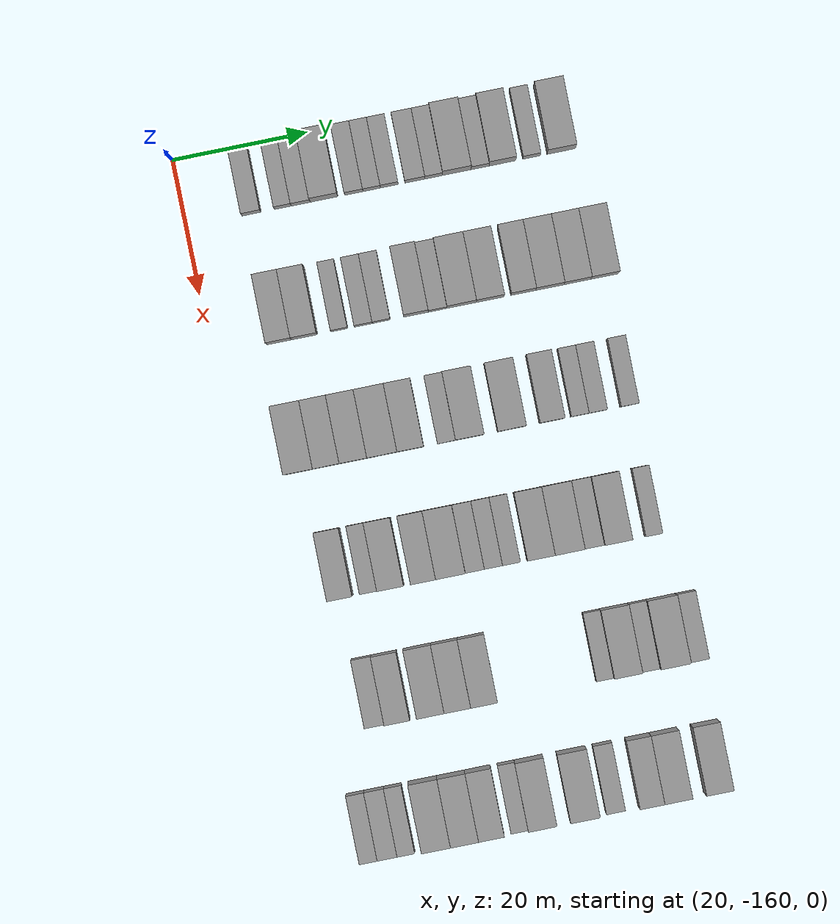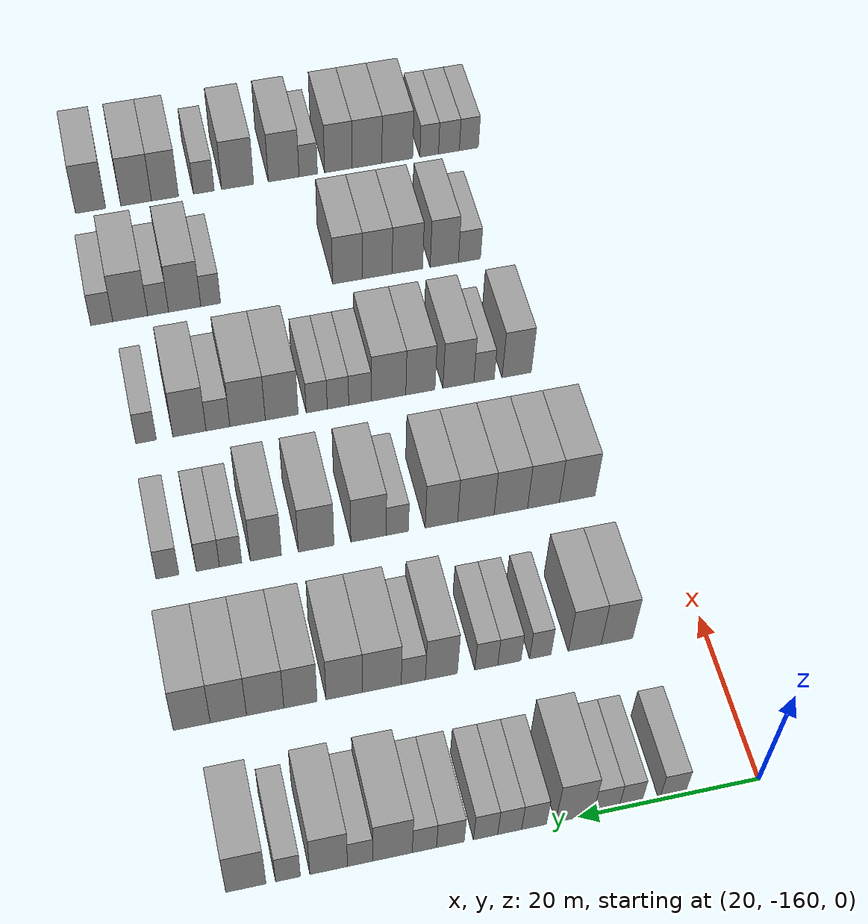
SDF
<sdf version="1.6">
 <world name="default">
  <model name="building_48">
   <static>1</static>
   <pose>25.0000 -150.2662 0 0.000000 0.000000 0.000000</pose>
   <link name="link">
    <pose>0 0 3.00 0 0 0</pose>
    <collision name="collision"><geometry><box><size>10.0000 2.8065 6.0000</size></box></geometry></collision>
    <visual name="visual">
     <cast_shadows>0</cast_shadows>
     <geometry><box><size>10.0000 2.8065 6.0000</size></box></geometry>
     <material>
      <script>
       <uri>model://grey_wall/materials/scripts</uri>
       <uri>model://grey_wall/materials/textures</uri>
       <name>vrc/grey_wall</name>
      </script>
     </material>
    </visual>
   </link>
  </model>
  <model name="building_49">
   <static>1</static>
   <pose>25.0000 -145.6243 0 0.000000 0.000000 0.000000</pose>
   <link name="link">
    <pose>0 0 3.00 0 0 0</pose>
    <collision name="collision"><geometry><box><size>10.0000 2.4772 6.0000</size></box></geometry></collision>
    <visual name="visual">
     <cast_shadows>0</cast_shadows>
     <geometry><box><size>10.0000 2.4772 6.0000</size></box></geometry>
     <material>
      <script>
       <uri>model://grey_wall/materials/scripts</uri>
       <uri>model://grey_wall/materials/textures</uri>
       <name>vrc/grey_wall</name>
      </script>
     </material>
    </visual>
   </link>
  </model>
  <model name="building_50">
   <static>1</static>
   <pose>25.0000 -142.9852 0 0.000000 0.000000 0.000000</pose>
   <link name="link">
    <pose>0 0 3.00 0 0 0</pose>
    <collision name="collision"><geometry><box><size>10.0000 2.8010 6.0000</size></box></geometry></collision>
    <visual name="visual">
     <cast_shadows>0</cast_shadows>
     <geometry><box><size>10.0000 2.8010 6.0000</size></box></geometry>
     <material>
      <script>
       <uri>model://grey_wall/materials/scripts</uri>
       <uri>model://grey_wall/materials/textures</uri>
       <name>vrc/grey_wall</name>
      </script>
     </material>
    </visual>
   </link>
  </model>
  <model name="building_51">
   <static>1</static>
   <pose>25.0000 -139.5423 0 0.000000 0.000000 0.000000</pose>
   <link name="link">
    <pose>0 0 4.50 0 0 0</pose>
    <collision name="collision"><geometry><box><size>10.0000 4.0848 9.0000</size></box></geometry></collision>
    <visual name="visual">
     <cast_shadows>0</cast_shadows>
     <geometry><box><size>10.0000 4.0848 9.0000</size></box></geometry>
     <material>
      <script>
       <uri>model://grey_wall/materials/scripts</uri>
       <uri>model://grey_wall/materials/textures</uri>
       <name>vrc/grey_wall</name>
      </script>
     </material>
    </visual>
   </link>
  </model>
  <model name="building_52">
   <static>1</static>
   <pose>25.0000 -135.1496 0 0.000000 0.000000 0.000000</pose>
   <link name="link">
    <pose>0 0 3.00 0 0 0</pose>
    <collision name="collision"><geometry><box><size>10.0000 2.7006 6.0000</size></box></geometry></collision>
    <visual name="visual">
     <cast_shadows>0</cast_shadows>
     <geometry><box><size>10.0000 2.7006 6.0000</size></box></geometry>
     <material>
      <script>
       <uri>model://grey_wall/materials/scripts</uri>
       <uri>model://grey_wall/materials/textures</uri>
       <name>vrc/grey_wall</name>
      </script>
     </material>
    </visual>
   </link>
  </model>
  <model name="building_53">
   <static>1</static>
   <pose>25.0000 -132.5088 0 0.000000 0.000000 0.000000</pose>
   <link name="link">
    <pose>0 0 3.00 0 0 0</pose>
    <collision name="collision"><geometry><box><size>10.0000 2.5809 6.0000</size></box></geometry></collision>
    <visual name="visual">
     <cast_shadows>0</cast_shadows>
     <geometry><box><size>10.0000 2.5809 6.0000</size></box></geometry>
     <material>
      <script>
       <uri>model://grey_wall/materials/scripts</uri>
       <uri>model://grey_wall/materials/textures</uri>
       <name>vrc/grey_wall</name>
      </script>
     </material>
    </visual>
   </link>
  </model>
  <model name="building_54">
   <static>1</static>
   <pose>25.0000 -129.9151 0 0.000000 0.000000 0.000000</pose>
   <link name="link">
    <pose>0 0 3.00 0 0 0</pose>
    <collision name="collision"><geometry><box><size>10.0000 2.6067 6.0000</size></box></geometry></collision>
    <visual name="visual">
     <cast_shadows>0</cast_shadows>
     <geometry><box><size>10.0000 2.6067 6.0000</size></box></geometry>
     <material>
      <script>
       <uri>model://grey_wall/materials/scripts</uri>
       <uri>model://grey_wall/materials/textures</uri>
       <name>vrc/grey_wall</name>
      </script>
     </material>
    </visual>
   </link>
  </model>
  <model name="building_55">
   <static>1</static>
   <pose>25.0000 -126.1321 0 0.000000 0.000000 0.000000</pose>
   <link name="link">
    <pose>0 0 3.00 0 0 0</pose>
    <collision name="collision"><geometry><box><size>10.0000 2.9593 6.0000</size></box></geometry></collision>
    <visual name="visual">
     <cast_shadows>0</cast_shadows>
     <geometry><box><size>10.0000 2.9593 6.0000</size></box></geometry>
     <material>
      <script>
       <uri>model://grey_wall/materials/scripts</uri>
       <uri>model://grey_wall/materials/textures</uri>
       <name>vrc/grey_wall</name>
      </script>
     </material>
    </visual>
   </link>
  </model>
  <model name="building_56">
   <static>1</static>
   <pose>25.0000 -123.3540 0 0.000000 0.000000 0.000000</pose>
   <link name="link">
    <pose>0 0 3.00 0 0 0</pose>
    <collision name="collision"><geometry><box><size>10.0000 2.5968 6.0000</size></box></geometry></collision>
    <visual name="visual">
     <cast_shadows>0</cast_shadows>
     <geometry><box><size>10.0000 2.5968 6.0000</size></box></geometry>
     <material>
      <script>
       <uri>model://grey_wall/materials/scripts</uri>
       <uri>model://grey_wall/materials/textures</uri>
       <name>vrc/grey_wall</name>
      </script>
     </material>
    </visual>
   </link>
  </model>
  <model name="building_57">
   <static>1</static>
   <pose>25.0000 -119.9415 0 0.000000 0.000000 0.000000</pose>
   <link name="link">
    <pose>0 0 4.50 0 0 0</pose>
    <collision name="collision"><geometry><box><size>10.0000 4.2282 9.0000</size></box></geometry></collision>
    <visual name="visual">
     <cast_shadows>0</cast_shadows>
     <geometry><box><size>10.0000 4.2282 9.0000</size></box></geometry>
     <material>
      <script>
       <uri>model://grey_wall/materials/scripts</uri>
       <uri>model://grey_wall/materials/textures</uri>
       <name>vrc/grey_wall</name>
      </script>
     </material>
    </visual>
   </link>
  </model>
  <model name="building_58">
   <static>1</static>
   <pose>25.0000 -116.5048 0 0.000000 0.000000 0.000000</pose>
   <link name="link">
    <pose>0 0 3.00 0 0 0</pose>
    <collision name="collision"><geometry><box><size>10.0000 2.6453 6.0000</size></box></geometry></collision>
    <visual name="visual">
     <cast_shadows>0</cast_shadows>
     <geometry><box><size>10.0000 2.6453 6.0000</size></box></geometry>
     <material>
      <script>
       <uri>model://grey_wall/materials/scripts</uri>
       <uri>model://grey_wall/materials/textures</uri>
       <name>vrc/grey_wall</name>
      </script>
     </material>
    </visual>
   </link>
  </model>
  <model name="building_59">
   <static>1</static>
   <pose>25.0000 -113.2037 0 0.000000 0.000000 0.000000</pose>
   <link name="link">
    <pose>0 0 4.50 0 0 0</pose>
    <collision name="collision"><geometry><box><size>10.0000 3.9570 9.0000</size></box></geometry></collision>
    <visual name="visual">
     <cast_shadows>0</cast_shadows>
     <geometry><box><size>10.0000 3.9570 9.0000</size></box></geometry>
     <material>
      <script>
       <uri>model://grey_wall/materials/scripts</uri>
       <uri>model://grey_wall/materials/textures</uri>
       <name>vrc/grey_wall</name>
      </script>
     </material>
    </visual>
   </link>
  </model>
  <model name="building_60">
   <static>1</static>
   <pose>25.0000 -108.9264 0 0.000000 0.000000 0.000000</pose>
   <link name="link">
    <pose>0 0 3.00 0 0 0</pose>
    <collision name="collision"><geometry><box><size>10.0000 2.5976 6.0000</size></box></geometry></collision>
    <visual name="visual">
     <cast_shadows>0</cast_shadows>
     <geometry><box><size>10.0000 2.5976 6.0000</size></box></geometry>
     <material>
      <script>
       <uri>model://grey_wall/materials/scripts</uri>
       <uri>model://grey_wall/materials/textures</uri>
       <name>vrc/grey_wall</name>
      </script>
     </material>
    </visual>
   </link>
  </model>
  <model name="building_61">
   <static>1</static>
   <pose>25.0000 -104.5335 0 0.000000 0.000000 0.000000</pose>
   <link name="link">
    <pose>0 0 4.50 0 0 0</pose>
    <collision name="collision"><geometry><box><size>10.0000 4.1882 9.0000</size></box></geometry></collision>
    <visual name="visual">
     <cast_shadows>0</cast_shadows>
     <geometry><box><size>10.0000 4.1882 9.0000</size></box></geometry>
     <material>
      <script>
       <uri>model://grey_wall/materials/scripts</uri>
       <uri>model://grey_wall/materials/textures</uri>
       <name>vrc/grey_wall</name>
      </script>
     </material>
    </visual>
   </link>
  </model>
  <model name="building_220">
   <static>1</static>
   <pose>44.0000 -149.9736 0 0.000000 0.000000 0.000000</pose>
   <link name="link">
    <pose>0 0 4.50 0 0 0</pose>
    <collision name="collision"><geometry><box><size>10.0000 3.6578 9.0000</size></box></geometry></collision>
    <visual name="visual">
     <cast_shadows>0</cast_shadows>
     <geometry><box><size>10.0000 3.6578 9.0000</size></box></geometry>
     <material>
      <script>
       <uri>model://grey_wall/materials/scripts</uri>
       <uri>model://grey_wall/materials/textures</uri>
       <name>vrc/grey_wall</name>
      </script>
     </material>
    </visual>
   </link>
  </model>
  <model name="building_221">
   <static>1</static>
   <pose>44.0000 -146.2440 0 0.000000 0.000000 0.000000</pose>
   <link name="link">
    <pose>0 0 4.50 0 0 0</pose>
    <collision name="collision"><geometry><box><size>10.0000 3.8013 9.0000</size></box></geometry></collision>
    <visual name="visual">
     <cast_shadows>0</cast_shadows>
     <geometry><box><size>10.0000 3.8013 9.0000</size></box></geometry>
     <material>
      <script>
       <uri>model://grey_wall/materials/scripts</uri>
       <uri>model://grey_wall/materials/textures</uri>
       <name>vrc/grey_wall</name>
      </script>
     </material>
    </visual>
   </link>
  </model>
  <model name="building_222">
   <static>1</static>
   <pose>44.0000 -141.1121 0 0.000000 0.000000 0.000000</pose>
   <link name="link">
    <pose>0 0 3.00 0 0 0</pose>
    <collision name="collision"><geometry><box><size>10.0000 2.4626 6.0000</size></box></geometry></collision>
    <visual name="visual">
     <cast_shadows>0</cast_shadows>
     <geometry><box><size>10.0000 2.4626 6.0000</size></box></geometry>
     <material>
      <script>
       <uri>model://grey_wall/materials/scripts</uri>
       <uri>model://grey_wall/materials/textures</uri>
       <name>vrc/grey_wall</name>
      </script>
     </material>
    </visual>
   </link>
  </model>
  <model name="building_223">
   <static>1</static>
   <pose>44.0000 -137.5568 0 0.000000 0.000000 0.000000</pose>
   <link name="link">
    <pose>0 0 3.00 0 0 0</pose>
    <collision name="collision"><geometry><box><size>10.0000 2.6478 6.0000</size></box></geometry></collision>
    <visual name="visual">
     <cast_shadows>0</cast_shadows>
     <geometry><box><size>10.0000 2.6478 6.0000</size></box></geometry>
     <material>
      <script>
       <uri>model://grey_wall/materials/scripts</uri>
       <uri>model://grey_wall/materials/textures</uri>
       <name>vrc/grey_wall</name>
      </script>
     </material>
    </visual>
   </link>
  </model>
  <model name="building_224">
   <static>1</static>
   <pose>44.0000 -134.9230 0 0.000000 0.000000 0.000000</pose>
   <link name="link">
    <pose>0 0 3.00 0 0 0</pose>
    <collision name="collision"><geometry><box><size>10.0000 2.6198 6.0000</size></box></geometry></collision>
    <visual name="visual">
     <cast_shadows>0</cast_shadows>
     <geometry><box><size>10.0000 2.6198 6.0000</size></box></geometry>
     <material>
      <script>
       <uri>model://grey_wall/materials/scripts</uri>
       <uri>model://grey_wall/materials/textures</uri>
       <name>vrc/grey_wall</name>
      </script>
     </material>
    </visual>
   </link>
  </model>
  <model name="building_225">
   <static>1</static>
   <pose>44.0000 -129.7990 0 0.000000 0.000000 0.000000</pose>
   <link name="link">
    <pose>0 0 4.50 0 0 0</pose>
    <collision name="collision"><geometry><box><size>10.0000 3.6281 9.0000</size></box></geometry></collision>
    <visual name="visual">
     <cast_shadows>0</cast_shadows>
     <geometry><box><size>10.0000 3.6281 9.0000</size></box></geometry>
     <material>
      <script>
       <uri>model://grey_wall/materials/scripts</uri>
       <uri>model://grey_wall/materials/textures</uri>
       <name>vrc/grey_wall</name>
      </script>
     </material>
    </visual>
   </link>
  </model>
  <model name="building_226">
   <static>1</static>
   <pose>44.0000 -126.6204 0 0.000000 0.000000 0.000000</pose>
   <link name="link">
    <pose>0 0 3.00 0 0 0</pose>
    <collision name="collision"><geometry><box><size>10.0000 2.7292 6.0000</size></box></geometry></collision>
    <visual name="visual">
     <cast_shadows>0</cast_shadows>
     <geometry><box><size>10.0000 2.7292 6.0000</size></box></geometry>
     <material>
      <script>
       <uri>model://grey_wall/materials/scripts</uri>
       <uri>model://grey_wall/materials/textures</uri>
       <name>vrc/grey_wall</name>
      </script>
     </material>
    </visual>
   </link>
  </model>
  <model name="building_227">
   <static>1</static>
   <pose>44.0000 -123.0811 0 0.000000 0.000000 0.000000</pose>
   <link name="link">
    <pose>0 0 4.50 0 0 0</pose>
    <collision name="collision"><geometry><box><size>10.0000 4.3493 9.0000</size></box></geometry></collision>
    <visual name="visual">
     <cast_shadows>0</cast_shadows>
     <geometry><box><size>10.0000 4.3493 9.0000</size></box></geometry>
     <material>
      <script>
       <uri>model://grey_wall/materials/scripts</uri>
       <uri>model://grey_wall/materials/textures</uri>
       <name>vrc/grey_wall</name>
      </script>
     </material>
    </visual>
   </link>
  </model>
  <model name="building_228">
   <static>1</static>
   <pose>44.0000 -118.8683 0 0.000000 0.000000 0.000000</pose>
   <link name="link">
    <pose>0 0 4.50 0 0 0</pose>
    <collision name="collision"><geometry><box><size>10.0000 4.0764 9.0000</size></box></geometry></collision>
    <visual name="visual">
     <cast_shadows>0</cast_shadows>
     <geometry><box><size>10.0000 4.0764 9.0000</size></box></geometry>
     <material>
      <script>
       <uri>model://grey_wall/materials/scripts</uri>
       <uri>model://grey_wall/materials/textures</uri>
       <name>vrc/grey_wall</name>
      </script>
     </material>
    </visual>
   </link>
  </model>
  <model name="building_229">
   <static>1</static>
   <pose>44.0000 -113.9846 0 0.000000 0.000000 0.000000</pose>
   <link name="link">
    <pose>0 0 4.50 0 0 0</pose>
    <collision name="collision"><geometry><box><size>10.0000 3.6909 9.0000</size></box></geometry></collision>
    <visual name="visual">
     <cast_shadows>0</cast_shadows>
     <geometry><box><size>10.0000 3.6909 9.0000</size></box></geometry>
     <material>
      <script>
       <uri>model://grey_wall/materials/scripts</uri>
       <uri>model://grey_wall/materials/textures</uri>
       <name>vrc/grey_wall</name>
      </script>
     </material>
    </visual>
   </link>
  </model>
  <model name="building_230">
   <static>1</static>
   <pose>44.0000 -110.0723 0 0.000000 0.000000 0.000000</pose>
   <link name="link">
    <pose>0 0 4.50 0 0 0</pose>
    <collision name="collision"><geometry><box><size>10.0000 4.1339 9.0000</size></box></geometry></collision>
    <visual name="visual">
     <cast_shadows>0</cast_shadows>
     <geometry><box><size>10.0000 4.1339 9.0000</size></box></geometry>
     <material>
      <script>
       <uri>model://grey_wall/materials/scripts</uri>
       <uri>model://grey_wall/materials/textures</uri>
       <name>vrc/grey_wall</name>
      </script>
     </material>
    </visual>
   </link>
  </model>
  <model name="building_231">
   <static>1</static>
   <pose>44.0000 -106.0103 0 0.000000 0.000000 0.000000</pose>
   <link name="link">
    <pose>0 0 4.50 0 0 0</pose>
    <collision name="collision"><geometry><box><size>10.0000 3.9901 9.0000</size></box></geometry></collision>
    <visual name="visual">
     <cast_shadows>0</cast_shadows>
     <geometry><box><size>10.0000 3.9901 9.0000</size></box></geometry>
     <material>
      <script>
       <uri>model://grey_wall/materials/scripts</uri>
       <uri>model://grey_wall/materials/textures</uri>
       <name>vrc/grey_wall</name>
      </script>
     </material>
    </visual>
   </link>
  </model>
  <model name="building_232">
   <static>1</static>
   <pose>44.0000 -101.9844 0 0.000000 0.000000 0.000000</pose>
   <link name="link">
    <pose>0 0 4.50 0 0 0</pose>
    <collision name="collision"><geometry><box><size>10.0000 4.0616 9.0000</size></box></geometry></collision>
    <visual name="visual">
     <cast_shadows>0</cast_shadows>
     <geometry><box><size>10.0000 4.0616 9.0000</size></box></geometry>
     <material>
      <script>
       <uri>model://grey_wall/materials/scripts</uri>
       <uri>model://grey_wall/materials/textures</uri>
       <name>vrc/grey_wall</name>
      </script>
     </material>
    </visual>
   </link>
  </model>
  <model name="building_395">
   <static>1</static>
   <pose>63.0000 -150.8809 0 0.000000 0.000000 0.000000</pose>
   <link name="link">
    <pose>0 0 4.50 0 0 0</pose>
    <collision name="collision"><geometry><box><size>10.0000 4.3420 9.0000</size></box></geometry></collision>
    <visual name="visual">
     <cast_shadows>0</cast_shadows>
     <geometry><box><size>10.0000 4.3420 9.0000</size></box></geometry>
     <material>
      <script>
       <uri>model://grey_wall/materials/scripts</uri>
       <uri>model://grey_wall/materials/textures</uri>
       <name>vrc/grey_wall</name>
      </script>
     </material>
    </visual>
   </link>
  </model>
  <model name="building_396">
   <static>1</static>
   <pose>63.0000 -146.7696 0 0.000000 0.000000 0.000000</pose>
   <link name="link">
    <pose>0 0 4.50 0 0 0</pose>
    <collision name="collision"><geometry><box><size>10.0000 3.8806 9.0000</size></box></geometry></collision>
    <visual name="visual">
     <cast_shadows>0</cast_shadows>
     <geometry><box><size>10.0000 3.8806 9.0000</size></box></geometry>
     <material>
      <script>
       <uri>model://grey_wall/materials/scripts</uri>
       <uri>model://grey_wall/materials/textures</uri>
       <name>vrc/grey_wall</name>
      </script>
     </material>
    </visual>
   </link>
  </model>
  <model name="building_397">
   <static>1</static>
   <pose>63.0000 -142.8059 0 0.000000 0.000000 0.000000</pose>
   <link name="link">
    <pose>0 0 4.50 0 0 0</pose>
    <collision name="collision"><geometry><box><size>10.0000 4.0466 9.0000</size></box></geometry></collision>
    <visual name="visual">
     <cast_shadows>0</cast_shadows>
     <geometry><box><size>10.0000 4.0466 9.0000</size></box></geometry>
     <material>
      <script>
       <uri>model://grey_wall/materials/scripts</uri>
       <uri>model://grey_wall/materials/textures</uri>
       <name>vrc/grey_wall</name>
      </script>
     </material>
    </visual>
   </link>
  </model>
  <model name="building_398">
   <static>1</static>
   <pose>63.0000 -138.5847 0 0.000000 0.000000 0.000000</pose>
   <link name="link">
    <pose>0 0 4.50 0 0 0</pose>
    <collision name="collision"><geometry><box><size>10.0000 4.3960 9.0000</size></box></geometry></collision>
    <visual name="visual">
     <cast_shadows>0</cast_shadows>
     <geometry><box><size>10.0000 4.3960 9.0000</size></box></geometry>
     <material>
      <script>
       <uri>model://grey_wall/materials/scripts</uri>
       <uri>model://grey_wall/materials/textures</uri>
       <name>vrc/grey_wall</name>
      </script>
     </material>
    </visual>
   </link>
  </model>
  <model name="building_399">
   <static>1</static>
   <pose>63.0000 -134.4409 0 0.000000 0.000000 0.000000</pose>
   <link name="link">
    <pose>0 0 4.50 0 0 0</pose>
    <collision name="collision"><geometry><box><size>10.0000 3.8915 9.0000</size></box></geometry></collision>
    <visual name="visual">
     <cast_shadows>0</cast_shadows>
     <geometry><box><size>10.0000 3.8915 9.0000</size></box></geometry>
     <material>
      <script>
       <uri>model://grey_wall/materials/scripts</uri>
       <uri>model://grey_wall/materials/textures</uri>
       <name>vrc/grey_wall</name>
      </script>
     </material>
    </visual>
   </link>
  </model>
  <model name="building_400">
   <static>1</static>
   <pose>63.0000 -129.1700 0 0.000000 0.000000 0.000000</pose>
   <link name="link">
    <pose>0 0 3.00 0 0 0</pose>
    <collision name="collision"><geometry><box><size>10.0000 2.6503 6.0000</size></box></geometry></collision>
    <visual name="visual">
     <cast_shadows>0</cast_shadows>
     <geometry><box><size>10.0000 2.6503 6.0000</size></box></geometry>
     <material>
      <script>
       <uri>model://grey_wall/materials/scripts</uri>
       <uri>model://grey_wall/materials/textures</uri>
       <name>vrc/grey_wall</name>
      </script>
     </material>
    </visual>
   </link>
  </model>
  <model name="building_401">
   <static>1</static>
   <pose>63.0000 -125.7518 0 0.000000 0.000000 0.000000</pose>
   <link name="link">
    <pose>0 0 4.50 0 0 0</pose>
    <collision name="collision"><geometry><box><size>10.0000 4.1862 9.0000</size></box></geometry></collision>
    <visual name="visual">
     <cast_shadows>0</cast_shadows>
     <geometry><box><size>10.0000 4.1862 9.0000</size></box></geometry>
     <material>
      <script>
       <uri>model://grey_wall/materials/scripts</uri>
       <uri>model://grey_wall/materials/textures</uri>
       <name>vrc/grey_wall</name>
      </script>
     </material>
    </visual>
   </link>
  </model>
  <model name="building_402">
   <static>1</static>
   <pose>63.0000 -119.5683 0 0.000000 0.000000 0.000000</pose>
   <link name="link">
    <pose>0 0 4.50 0 0 0</pose>
    <collision name="collision"><geometry><box><size>10.0000 4.1808 9.0000</size></box></geometry></collision>
    <visual name="visual">
     <cast_shadows>0</cast_shadows>
     <geometry><box><size>10.0000 4.1808 9.0000</size></box></geometry>
     <material>
      <script>
       <uri>model://grey_wall/materials/scripts</uri>
       <uri>model://grey_wall/materials/textures</uri>
       <name>vrc/grey_wall</name>
      </script>
     </material>
    </visual>
   </link>
  </model>
  <model name="building_403">
   <static>1</static>
   <pose>63.0000 -113.6616 0 0.000000 0.000000 0.000000</pose>
   <link name="link">
    <pose>0 0 4.50 0 0 0</pose>
    <collision name="collision"><geometry><box><size>10.0000 3.6326 9.0000</size></box></geometry></collision>
    <visual name="visual">
     <cast_shadows>0</cast_shadows>
     <geometry><box><size>10.0000 3.6326 9.0000</size></box></geometry>
     <material>
      <script>
       <uri>model://grey_wall/materials/scripts</uri>
       <uri>model://grey_wall/materials/textures</uri>
       <name>vrc/grey_wall</name>
      </script>
     </material>
    </visual>
   </link>
  </model>
  <model name="building_404">
   <static>1</static>
   <pose>63.0000 -109.5482 0 0.000000 0.000000 0.000000</pose>
   <link name="link">
    <pose>0 0 3.00 0 0 0</pose>
    <collision name="collision"><geometry><box><size>10.0000 2.5941 6.0000</size></box></geometry></collision>
    <visual name="visual">
     <cast_shadows>0</cast_shadows>
     <geometry><box><size>10.0000 2.5941 6.0000</size></box></geometry>
     <material>
      <script>
       <uri>model://grey_wall/materials/scripts</uri>
       <uri>model://grey_wall/materials/textures</uri>
       <name>vrc/grey_wall</name>
      </script>
     </material>
    </visual>
   </link>
  </model>
  <model name="building_405">
   <static>1</static>
   <pose>63.0000 -106.9045 0 0.000000 0.000000 0.000000</pose>
   <link name="link">
    <pose>0 0 3.00 0 0 0</pose>
    <collision name="collision"><geometry><box><size>10.0000 2.6933 6.0000</size></box></geometry></collision>
    <visual name="visual">
     <cast_shadows>0</cast_shadows>
     <geometry><box><size>10.0000 2.6933 6.0000</size></box></geometry>
     <material>
      <script>
       <uri>model://grey_wall/materials/scripts</uri>
       <uri>model://grey_wall/materials/textures</uri>
       <name>vrc/grey_wall</name>
      </script>
     </material>
    </visual>
   </link>
  </model>
  <model name="building_406">
   <static>1</static>
   <pose>63.0000 -102.2350 0 0.000000 0.000000 0.000000</pose>
   <link name="link">
    <pose>0 0 3.00 0 0 0</pose>
    <collision name="collision"><geometry><box><size>10.0000 2.6457 6.0000</size></box></geometry></collision>
    <visual name="visual">
     <cast_shadows>0</cast_shadows>
     <geometry><box><size>10.0000 2.6457 6.0000</size></box></geometry>
     <material>
      <script>
       <uri>model://grey_wall/materials/scripts</uri>
       <uri>model://grey_wall/materials/textures</uri>
       <name>vrc/grey_wall</name>
      </script>
     </material>
    </visual>
   </link>
  </model>
  <model name="building_571">
   <static>1</static>
   <pose>82.0000 -148.6308 0 0.000000 0.000000 0.000000</pose>
   <link name="link">
    <pose>0 0 4.50 0 0 0</pose>
    <collision name="collision"><geometry><box><size>10.0000 3.7207 9.0000</size></box></geometry></collision>
    <visual name="visual">
     <cast_shadows>0</cast_shadows>
     <geometry><box><size>10.0000 3.7207 9.0000</size></box></geometry>
     <material>
      <script>
       <uri>model://grey_wall/materials/scripts</uri>
       <uri>model://grey_wall/materials/textures</uri>
       <name>vrc/grey_wall</name>
      </script>
     </material>
    </visual>
   </link>
  </model>
  <model name="building_572">
   <static>1</static>
   <pose>82.0000 -144.4745 0 0.000000 0.000000 0.000000</pose>
   <link name="link">
    <pose>0 0 3.00 0 0 0</pose>
    <collision name="collision"><geometry><box><size>10.0000 2.5918 6.0000</size></box></geometry></collision>
    <visual name="visual">
     <cast_shadows>0</cast_shadows>
     <geometry><box><size>10.0000 2.5918 6.0000</size></box></geometry>
     <material>
      <script>
       <uri>model://grey_wall/materials/scripts</uri>
       <uri>model://grey_wall/materials/textures</uri>
       <name>vrc/grey_wall</name>
      </script>
     </material>
    </visual>
   </link>
  </model>
  <model name="building_573">
   <static>1</static>
   <pose>82.0000 -141.2205 0 0.000000 0.000000 0.000000</pose>
   <link name="link">
    <pose>0 0 4.50 0 0 0</pose>
    <collision name="collision"><geometry><box><size>10.0000 3.9163 9.0000</size></box></geometry></collision>
    <visual name="visual">
     <cast_shadows>0</cast_shadows>
     <geometry><box><size>10.0000 3.9163 9.0000</size></box></geometry>
     <material>
      <script>
       <uri>model://grey_wall/materials/scripts</uri>
       <uri>model://grey_wall/materials/textures</uri>
       <name>vrc/grey_wall</name>
      </script>
     </material>
    </visual>
   </link>
  </model>
  <model name="building_574">
   <static>1</static>
   <pose>82.0000 -136.4256 0 0.000000 0.000000 0.000000</pose>
   <link name="link">
    <pose>0 0 4.50 0 0 0</pose>
    <collision name="collision"><geometry><box><size>10.0000 3.6734 9.0000</size></box></geometry></collision>
    <visual name="visual">
     <cast_shadows>0</cast_shadows>
     <geometry><box><size>10.0000 3.6734 9.0000</size></box></geometry>
     <material>
      <script>
       <uri>model://grey_wall/materials/scripts</uri>
       <uri>model://grey_wall/materials/textures</uri>
       <name>vrc/grey_wall</name>
      </script>
     </material>
    </visual>
   </link>
  </model>
  <model name="building_575">
   <static>1</static>
   <pose>82.0000 -132.4194 0 0.000000 0.000000 0.000000</pose>
   <link name="link">
    <pose>0 0 4.50 0 0 0</pose>
    <collision name="collision"><geometry><box><size>10.0000 4.3391 9.0000</size></box></geometry></collision>
    <visual name="visual">
     <cast_shadows>0</cast_shadows>
     <geometry><box><size>10.0000 4.3391 9.0000</size></box></geometry>
     <material>
      <script>
       <uri>model://grey_wall/materials/scripts</uri>
       <uri>model://grey_wall/materials/textures</uri>
       <name>vrc/grey_wall</name>
      </script>
     </material>
    </visual>
   </link>
  </model>
  <model name="building_576">
   <static>1</static>
   <pose>82.0000 -128.8480 0 0.000000 0.000000 0.000000</pose>
   <link name="link">
    <pose>0 0 3.00 0 0 0</pose>
    <collision name="collision"><geometry><box><size>10.0000 2.8037 6.0000</size></box></geometry></collision>
    <visual name="visual">
     <cast_shadows>0</cast_shadows>
     <geometry><box><size>10.0000 2.8037 6.0000</size></box></geometry>
     <material>
      <script>
       <uri>model://grey_wall/materials/scripts</uri>
       <uri>model://grey_wall/materials/textures</uri>
       <name>vrc/grey_wall</name>
      </script>
     </material>
    </visual>
   </link>
  </model>
  <model name="building_577">
   <static>1</static>
   <pose>82.0000 -126.1114 0 0.000000 0.000000 0.000000</pose>
   <link name="link">
    <pose>0 0 3.00 0 0 0</pose>
    <collision name="collision"><geometry><box><size>10.0000 2.6694 6.0000</size></box></geometry></collision>
    <visual name="visual">
     <cast_shadows>0</cast_shadows>
     <geometry><box><size>10.0000 2.6694 6.0000</size></box></geometry>
     <material>
      <script>
       <uri>model://grey_wall/materials/scripts</uri>
       <uri>model://grey_wall/materials/textures</uri>
       <name>vrc/grey_wall</name>
      </script>
     </material>
    </visual>
   </link>
  </model>
  <model name="building_578">
   <static>1</static>
   <pose>82.0000 -123.4715 0 0.000000 0.000000 0.000000</pose>
   <link name="link">
    <pose>0 0 3.00 0 0 0</pose>
    <collision name="collision"><geometry><box><size>10.0000 2.6105 6.0000</size></box></geometry></collision>
    <visual name="visual">
     <cast_shadows>0</cast_shadows>
     <geometry><box><size>10.0000 2.6105 6.0000</size></box></geometry>
     <material>
      <script>
       <uri>model://grey_wall/materials/scripts</uri>
       <uri>model://grey_wall/materials/textures</uri>
       <name>vrc/grey_wall</name>
      </script>
     </material>
    </visual>
   </link>
  </model>
  <model name="building_579">
   <static>1</static>
   <pose>82.0000 -119.1369 0 0.000000 0.000000 0.000000</pose>
   <link name="link">
    <pose>0 0 4.50 0 0 0</pose>
    <collision name="collision"><geometry><box><size>10.0000 4.0587 9.0000</size></box></geometry></collision>
    <visual name="visual">
     <cast_shadows>0</cast_shadows>
     <geometry><box><size>10.0000 4.0587 9.0000</size></box></geometry>
     <material>
      <script>
       <uri>model://grey_wall/materials/scripts</uri>
       <uri>model://grey_wall/materials/textures</uri>
       <name>vrc/grey_wall</name>
      </script>
     </material>
    </visual>
   </link>
  </model>
  <model name="building_580">
   <static>1</static>
   <pose>82.0000 -114.9320 0 0.000000 0.000000 0.000000</pose>
   <link name="link">
    <pose>0 0 4.50 0 0 0</pose>
    <collision name="collision"><geometry><box><size>10.0000 4.3511 9.0000</size></box></geometry></collision>
    <visual name="visual">
     <cast_shadows>0</cast_shadows>
     <geometry><box><size>10.0000 4.3511 9.0000</size></box></geometry>
     <material>
      <script>
       <uri>model://grey_wall/materials/scripts</uri>
       <uri>model://grey_wall/materials/textures</uri>
       <name>vrc/grey_wall</name>
      </script>
     </material>
    </visual>
   </link>
  </model>
  <model name="building_581">
   <static>1</static>
   <pose>82.0000 -111.3008 0 0.000000 0.000000 0.000000</pose>
   <link name="link">
    <pose>0 0 3.00 0 0 0</pose>
    <collision name="collision"><geometry><box><size>10.0000 2.9115 6.0000</size></box></geometry></collision>
    <visual name="visual">
     <cast_shadows>0</cast_shadows>
     <geometry><box><size>10.0000 2.9115 6.0000</size></box></geometry>
     <material>
      <script>
       <uri>model://grey_wall/materials/scripts</uri>
       <uri>model://grey_wall/materials/textures</uri>
       <name>vrc/grey_wall</name>
      </script>
     </material>
    </visual>
   </link>
  </model>
  <model name="building_582">
   <static>1</static>
   <pose>82.0000 -107.8213 0 0.000000 0.000000 0.000000</pose>
   <link name="link">
    <pose>0 0 4.50 0 0 0</pose>
    <collision name="collision"><geometry><box><size>10.0000 4.0475 9.0000</size></box></geometry></collision>
    <visual name="visual">
     <cast_shadows>0</cast_shadows>
     <geometry><box><size>10.0000 4.0475 9.0000</size></box></geometry>
     <material>
      <script>
       <uri>model://grey_wall/materials/scripts</uri>
       <uri>model://grey_wall/materials/textures</uri>
       <name>vrc/grey_wall</name>
      </script>
     </material>
    </visual>
   </link>
  </model>
  <model name="building_583">
   <static>1</static>
   <pose>82.0000 -102.5463 0 0.000000 0.000000 0.000000</pose>
   <link name="link">
    <pose>0 0 3.00 0 0 0</pose>
    <collision name="collision"><geometry><box><size>10.0000 2.5025 6.0000</size></box></geometry></collision>
    <visual name="visual">
     <cast_shadows>0</cast_shadows>
     <geometry><box><size>10.0000 2.5025 6.0000</size></box></geometry>
     <material>
      <script>
       <uri>model://grey_wall/materials/scripts</uri>
       <uri>model://grey_wall/materials/textures</uri>
       <name>vrc/grey_wall</name>
      </script>
     </material>
    </visual>
   </link>
  </model>
  <model name="building_755">
   <static>1</static>
   <pose>101.0000 -147.4315 0 0.000000 0.000000 0.000000</pose>
   <link name="link">
    <pose>0 0 3.00 0 0 0</pose>
    <collision name="collision"><geometry><box><size>10.0000 2.9485 6.0000</size></box></geometry></collision>
    <visual name="visual">
     <cast_shadows>0</cast_shadows>
     <geometry><box><size>10.0000 2.9485 6.0000</size></box></geometry>
     <material>
      <script>
       <uri>model://grey_wall/materials/scripts</uri>
       <uri>model://grey_wall/materials/textures</uri>
       <name>vrc/grey_wall</name>
      </script>
     </material>
    </visual>
   </link>
  </model>
  <model name="building_756">
   <static>1</static>
   <pose>101.0000 -144.0887 0 0.000000 0.000000 0.000000</pose>
   <link name="link">
    <pose>0 0 4.50 0 0 0</pose>
    <collision name="collision"><geometry><box><size>10.0000 3.7370 9.0000</size></box></geometry></collision>
    <visual name="visual">
     <cast_shadows>0</cast_shadows>
     <geometry><box><size>10.0000 3.7370 9.0000</size></box></geometry>
     <material>
      <script>
       <uri>model://grey_wall/materials/scripts</uri>
       <uri>model://grey_wall/materials/textures</uri>
       <name>vrc/grey_wall</name>
      </script>
     </material>
    </visual>
   </link>
  </model>
  <model name="building_757">
   <static>1</static>
   <pose>101.0000 -139.2078 0 0.000000 0.000000 0.000000</pose>
   <link name="link">
    <pose>0 0 4.50 0 0 0</pose>
    <collision name="collision"><geometry><box><size>10.0000 4.0248 9.0000</size></box></geometry></collision>
    <visual name="visual">
     <cast_shadows>0</cast_shadows>
     <geometry><box><size>10.0000 4.0248 9.0000</size></box></geometry>
     <material>
      <script>
       <uri>model://grey_wall/materials/scripts</uri>
       <uri>model://grey_wall/materials/textures</uri>
       <name>vrc/grey_wall</name>
      </script>
     </material>
    </visual>
   </link>
  </model>
  <model name="building_758">
   <static>1</static>
   <pose>101.0000 -135.2522 0 0.000000 0.000000 0.000000</pose>
   <link name="link">
    <pose>0 0 4.50 0 0 0</pose>
    <collision name="collision"><geometry><box><size>10.0000 3.8865 9.0000</size></box></geometry></collision>
    <visual name="visual">
     <cast_shadows>0</cast_shadows>
     <geometry><box><size>10.0000 3.8865 9.0000</size></box></geometry>
     <material>
      <script>
       <uri>model://grey_wall/materials/scripts</uri>
       <uri>model://grey_wall/materials/textures</uri>
       <name>vrc/grey_wall</name>
      </script>
     </material>
    </visual>
   </link>
  </model>
  <model name="building_759">
   <static>1</static>
   <pose>101.0000 -131.3515 0 0.000000 0.000000 0.000000</pose>
   <link name="link">
    <pose>0 0 4.50 0 0 0</pose>
    <collision name="collision"><geometry><box><size>10.0000 3.9148 9.0000</size></box></geometry></collision>
    <visual name="visual">
     <cast_shadows>0</cast_shadows>
     <geometry><box><size>10.0000 3.9148 9.0000</size></box></geometry>
     <material>
      <script>
       <uri>model://grey_wall/materials/scripts</uri>
       <uri>model://grey_wall/materials/textures</uri>
       <name>vrc/grey_wall</name>
      </script>
     </material>
    </visual>
   </link>
  </model>
  <model name="building_760">
   <static>1</static>
   <pose>101.0000 -113.5877 0 0.000000 0.000000 0.000000</pose>
   <link name="link">
    <pose>0 0 3.00 0 0 0</pose>
    <collision name="collision"><geometry><box><size>10.0000 2.5376 6.0000</size></box></geometry></collision>
    <visual name="visual">
     <cast_shadows>0</cast_shadows>
     <geometry><box><size>10.0000 2.5376 6.0000</size></box></geometry>
     <material>
      <script>
       <uri>model://grey_wall/materials/scripts</uri>
       <uri>model://grey_wall/materials/textures</uri>
       <name>vrc/grey_wall</name>
      </script>
     </material>
    </visual>
   </link>
  </model>
  <model name="building_761">
   <static>1</static>
   <pose>101.0000 -110.2544 0 0.000000 0.000000 0.000000</pose>
   <link name="link">
    <pose>0 0 4.50 0 0 0</pose>
    <collision name="collision"><geometry><box><size>10.0000 4.1289 9.0000</size></box></geometry></collision>
    <visual name="visual">
     <cast_shadows>0</cast_shadows>
     <geometry><box><size>10.0000 4.1289 9.0000</size></box></geometry>
     <material>
      <script>
       <uri>model://grey_wall/materials/scripts</uri>
       <uri>model://grey_wall/materials/textures</uri>
       <name>vrc/grey_wall</name>
      </script>
     </material>
    </visual>
   </link>
  </model>
  <model name="building_762">
   <static>1</static>
   <pose>101.0000 -106.8597 0 0.000000 0.000000 0.000000</pose>
   <link name="link">
    <pose>0 0 3.00 0 0 0</pose>
    <collision name="collision"><geometry><box><size>10.0000 2.6605 6.0000</size></box></geometry></collision>
    <visual name="visual">
     <cast_shadows>0</cast_shadows>
     <geometry><box><size>10.0000 2.6605 6.0000</size></box></geometry>
     <material>
      <script>
       <uri>model://grey_wall/materials/scripts</uri>
       <uri>model://grey_wall/materials/textures</uri>
       <name>vrc/grey_wall</name>
      </script>
     </material>
    </visual>
   </link>
  </model>
  <model name="building_763">
   <static>1</static>
   <pose>101.0000 -103.3192 0 0.000000 0.000000 0.000000</pose>
   <link name="link">
    <pose>0 0 4.50 0 0 0</pose>
    <collision name="collision"><geometry><box><size>10.0000 4.4204 9.0000</size></box></geometry></collision>
    <visual name="visual">
     <cast_shadows>0</cast_shadows>
     <geometry><box><size>10.0000 4.4204 9.0000</size></box></geometry>
     <material>
      <script>
       <uri>model://grey_wall/materials/scripts</uri>
       <uri>model://grey_wall/materials/textures</uri>
       <name>vrc/grey_wall</name>
      </script>
     </material>
    </visual>
   </link>
  </model>
  <model name="building_764">
   <static>1</static>
   <pose>101.0000 -99.7057 0 0.000000 0.000000 0.000000</pose>
   <link name="link">
    <pose>0 0 3.00 0 0 0</pose>
    <collision name="collision"><geometry><box><size>10.0000 2.8065 6.0000</size></box></geometry></collision>
    <visual name="visual">
     <cast_shadows>0</cast_shadows>
     <geometry><box><size>10.0000 2.8065 6.0000</size></box></geometry>
     <material>
      <script>
       <uri>model://grey_wall/materials/scripts</uri>
       <uri>model://grey_wall/materials/textures</uri>
       <name>vrc/grey_wall</name>
      </script>
     </material>
    </visual>
   </link>
  </model>
  <model name="building_933">
   <static>1</static>
   <pose>120.0000 -152.1648 0 0.000000 0.000000 0.000000</pose>
   <link name="link">
    <pose>0 0 3.00 0 0 0</pose>
    <collision name="collision"><geometry><box><size>10.0000 2.6424 6.0000</size></box></geometry></collision>
    <visual name="visual">
     <cast_shadows>0</cast_shadows>
     <geometry><box><size>10.0000 2.6424 6.0000</size></box></geometry>
     <material>
      <script>
       <uri>model://grey_wall/materials/scripts</uri>
       <uri>model://grey_wall/materials/textures</uri>
       <name>vrc/grey_wall</name>
      </script>
     </material>
    </visual>
   </link>
  </model>
  <model name="building_934">
   <static>1</static>
   <pose>120.0000 -149.3919 0 0.000000 0.000000 0.000000</pose>
   <link name="link">
    <pose>0 0 3.00 0 0 0</pose>
    <collision name="collision"><geometry><box><size>10.0000 2.9033 6.0000</size></box></geometry></collision>
    <visual name="visual">
     <cast_shadows>0</cast_shadows>
     <geometry><box><size>10.0000 2.9033 6.0000</size></box></geometry>
     <material>
      <script>
       <uri>model://grey_wall/materials/scripts</uri>
       <uri>model://grey_wall/materials/textures</uri>
       <name>vrc/grey_wall</name>
      </script>
     </material>
    </visual>
   </link>
  </model>
  <model name="building_935">
   <static>1</static>
   <pose>120.0000 -146.6480 0 0.000000 0.000000 0.000000</pose>
   <link name="link">
    <pose>0 0 3.00 0 0 0</pose>
    <collision name="collision"><geometry><box><size>10.0000 2.5845 6.0000</size></box></geometry></collision>
    <visual name="visual">
     <cast_shadows>0</cast_shadows>
     <geometry><box><size>10.0000 2.5845 6.0000</size></box></geometry>
     <material>
      <script>
       <uri>model://grey_wall/materials/scripts</uri>
       <uri>model://grey_wall/materials/textures</uri>
       <name>vrc/grey_wall</name>
      </script>
     </material>
    </visual>
   </link>
  </model>
  <model name="building_936">
   <static>1</static>
   <pose>120.0000 -142.2300 0 0.000000 0.000000 0.000000</pose>
   <link name="link">
    <pose>0 0 4.50 0 0 0</pose>
    <collision name="collision"><geometry><box><size>10.0000 4.2516 9.0000</size></box></geometry></collision>
    <visual name="visual">
     <cast_shadows>0</cast_shadows>
     <geometry><box><size>10.0000 4.2516 9.0000</size></box></geometry>
     <material>
      <script>
       <uri>model://grey_wall/materials/scripts</uri>
       <uri>model://grey_wall/materials/textures</uri>
       <name>vrc/grey_wall</name>
      </script>
     </material>
    </visual>
   </link>
  </model>
  <model name="building_937">
   <static>1</static>
   <pose>120.0000 -138.0558 0 0.000000 0.000000 0.000000</pose>
   <link name="link">
    <pose>0 0 4.50 0 0 0</pose>
    <collision name="collision"><geometry><box><size>10.0000 4.0969 9.0000</size></box></geometry></collision>
    <visual name="visual">
     <cast_shadows>0</cast_shadows>
     <geometry><box><size>10.0000 4.0969 9.0000</size></box></geometry>
     <material>
      <script>
       <uri>model://grey_wall/materials/scripts</uri>
       <uri>model://grey_wall/materials/textures</uri>
       <name>vrc/grey_wall</name>
      </script>
     </material>
    </visual>
   </link>
  </model>
  <model name="building_938">
   <static>1</static>
   <pose>120.0000 -134.1245 0 0.000000 0.000000 0.000000</pose>
   <link name="link">
    <pose>0 0 4.50 0 0 0</pose>
    <collision name="collision"><geometry><box><size>10.0000 3.7656 9.0000</size></box></geometry></collision>
    <visual name="visual">
     <cast_shadows>0</cast_shadows>
     <geometry><box><size>10.0000 3.7656 9.0000</size></box></geometry>
     <material>
      <script>
       <uri>model://grey_wall/materials/scripts</uri>
       <uri>model://grey_wall/materials/textures</uri>
       <name>vrc/grey_wall</name>
      </script>
     </material>
    </visual>
   </link>
  </model>
  <model name="building_939">
   <static>1</static>
   <pose>120.0000 -129.9902 0 0.000000 0.000000 0.000000</pose>
   <link name="link">
    <pose>0 0 3.00 0 0 0</pose>
    <collision name="collision"><geometry><box><size>10.0000 2.5031 6.0000</size></box></geometry></collision>
    <visual name="visual">
     <cast_shadows>0</cast_shadows>
     <geometry><box><size>10.0000 2.5031 6.0000</size></box></geometry>
     <material>
      <script>
       <uri>model://grey_wall/materials/scripts</uri>
       <uri>model://grey_wall/materials/textures</uri>
       <name>vrc/grey_wall</name>
      </script>
     </material>
    </visual>
   </link>
  </model>
  <model name="building_940">
   <static>1</static>
   <pose>120.0000 -126.6497 0 0.000000 0.000000 0.000000</pose>
   <link name="link">
    <pose>0 0 4.50 0 0 0</pose>
    <collision name="collision"><geometry><box><size>10.0000 4.1778 9.0000</size></box></geometry></collision>
    <visual name="visual">
     <cast_shadows>0</cast_shadows>
     <geometry><box><size>10.0000 4.1778 9.0000</size></box></geometry>
     <material>
      <script>
       <uri>model://grey_wall/materials/scripts</uri>
       <uri>model://grey_wall/materials/textures</uri>
       <name>vrc/grey_wall</name>
      </script>
     </material>
    </visual>
   </link>
  </model>
  <model name="building_941">
   <static>1</static>
   <pose>120.0000 -120.3985 0 0.000000 0.000000 0.000000</pose>
   <link name="link">
    <pose>0 0 4.50 0 0 0</pose>
    <collision name="collision"><geometry><box><size>10.0000 4.3246 9.0000</size></box></geometry></collision>
    <visual name="visual">
     <cast_shadows>0</cast_shadows>
     <geometry><box><size>10.0000 4.3246 9.0000</size></box></geometry>
     <material>
      <script>
       <uri>model://grey_wall/materials/scripts</uri>
       <uri>model://grey_wall/materials/textures</uri>
       <name>vrc/grey_wall</name>
      </script>
     </material>
    </visual>
   </link>
  </model>
  <model name="building_942">
   <static>1</static>
   <pose>120.0000 -115.8386 0 0.000000 0.000000 0.000000</pose>
   <link name="link">
    <pose>0 0 3.00 0 0 0</pose>
    <collision name="collision"><geometry><box><size>10.0000 2.7952 6.0000</size></box></geometry></collision>
    <visual name="visual">
     <cast_shadows>0</cast_shadows>
     <geometry><box><size>10.0000 2.7952 6.0000</size></box></geometry>
     <material>
      <script>
       <uri>model://grey_wall/materials/scripts</uri>
       <uri>model://grey_wall/materials/textures</uri>
       <name>vrc/grey_wall</name>
      </script>
     </material>
    </visual>
   </link>
  </model>
  <model name="building_943">
   <static>1</static>
   <pose>120.0000 -110.6328 0 0.000000 0.000000 0.000000</pose>
   <link name="link">
    <pose>0 0 4.50 0 0 0</pose>
    <collision name="collision"><geometry><box><size>10.0000 3.6164 9.0000</size></box></geometry></collision>
    <visual name="visual">
     <cast_shadows>0</cast_shadows>
     <geometry><box><size>10.0000 3.6164 9.0000</size></box></geometry>
     <material>
      <script>
       <uri>model://grey_wall/materials/scripts</uri>
       <uri>model://grey_wall/materials/textures</uri>
       <name>vrc/grey_wall</name>
      </script>
     </material>
    </visual>
   </link>
  </model>
  <model name="building_944">
   <static>1</static>
   <pose>120.0000 -106.7789 0 0.000000 0.000000 0.000000</pose>
   <link name="link">
    <pose>0 0 4.50 0 0 0</pose>
    <collision name="collision"><geometry><box><size>10.0000 4.0914 9.0000</size></box></geometry></collision>
    <visual name="visual">
     <cast_shadows>0</cast_shadows>
     <geometry><box><size>10.0000 4.0914 9.0000</size></box></geometry>
     <material>
      <script>
       <uri>model://grey_wall/materials/scripts</uri>
       <uri>model://grey_wall/materials/textures</uri>
       <name>vrc/grey_wall</name>
      </script>
     </material>
    </visual>
   </link>
  </model>
  <model name="building_945">
   <static>1</static>
   <pose>120.0000 -100.7249 0 0.000000 0.000000 0.000000</pose>
   <link name="link">
    <pose>0 0 4.50 0 0 0</pose>
    <collision name="collision"><geometry><box><size>10.0000 4.0165 9.0000</size></box></geometry></collision>
    <visual name="visual">
     <cast_shadows>0</cast_shadows>
     <geometry><box><size>10.0000 4.0165 9.0000</size></box></geometry>
     <material>
      <script>
       <uri>model://grey_wall/materials/scripts</uri>
       <uri>model://grey_wall/materials/textures</uri>
       <name>vrc/grey_wall</name>
      </script>
     </material>
    </visual>
   </link>
  </model>
 </world>
</sdf>
